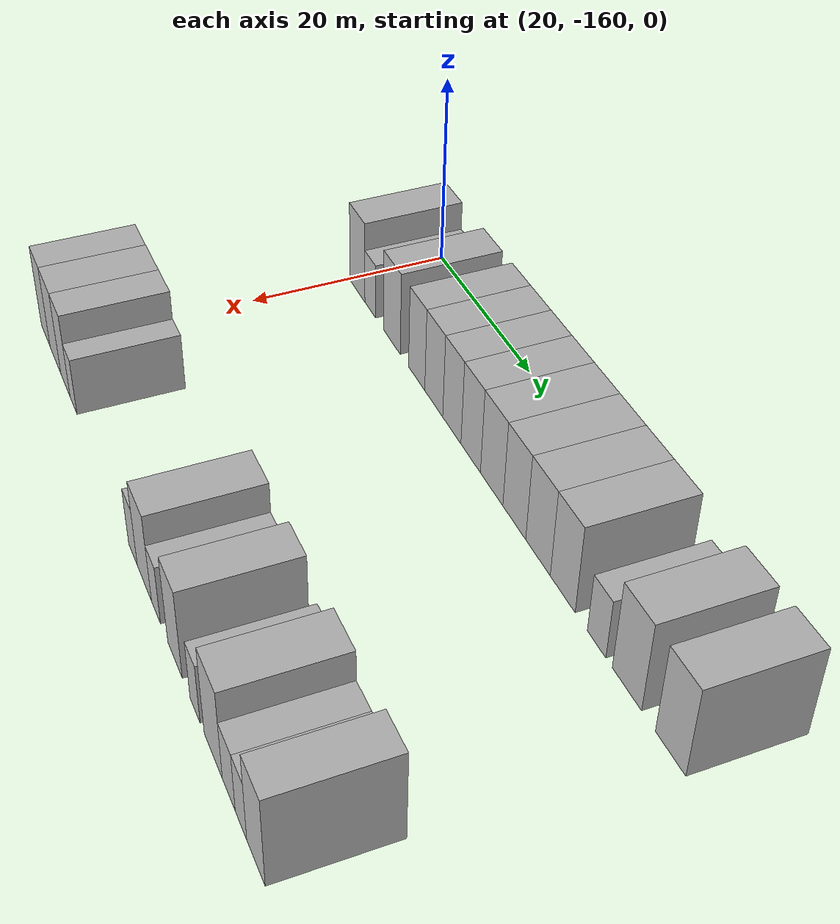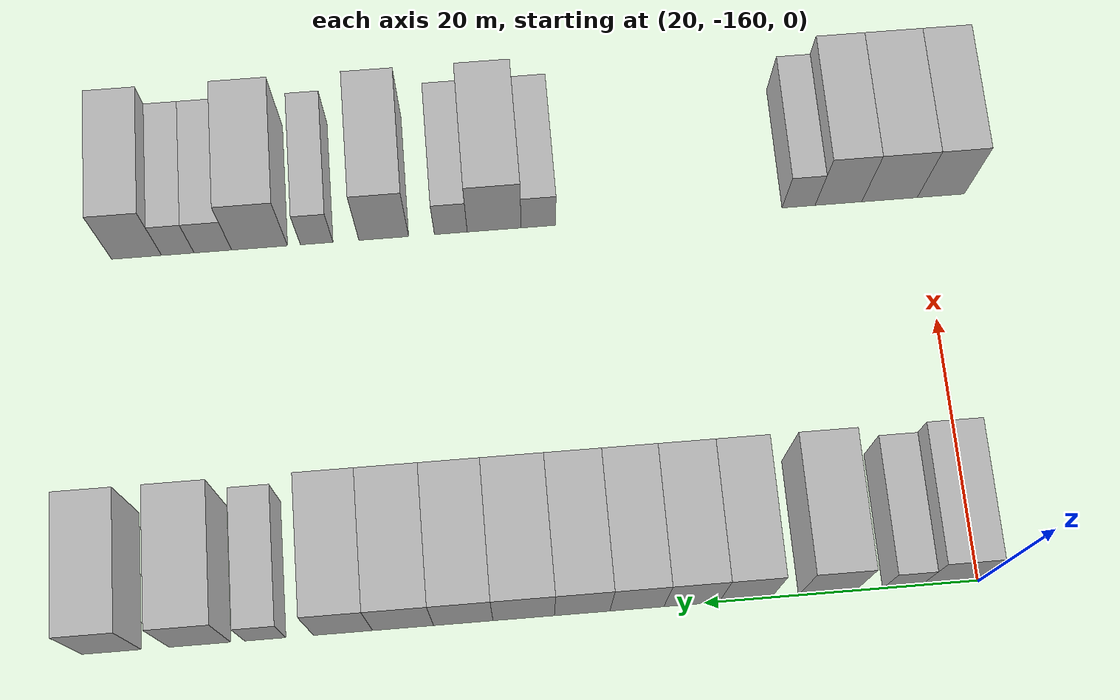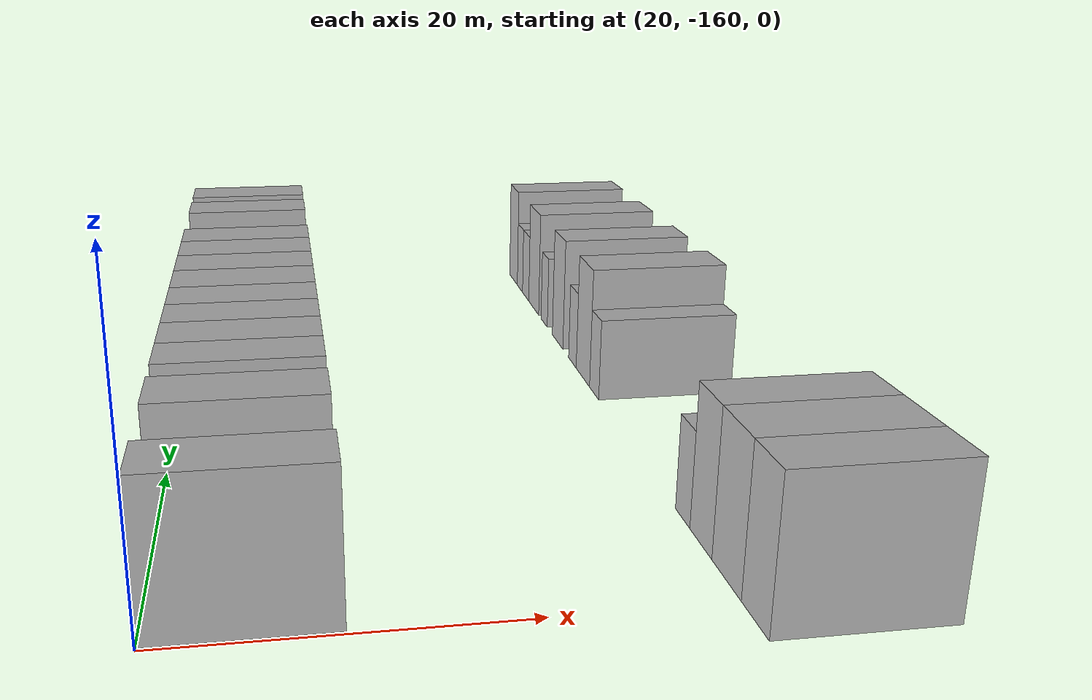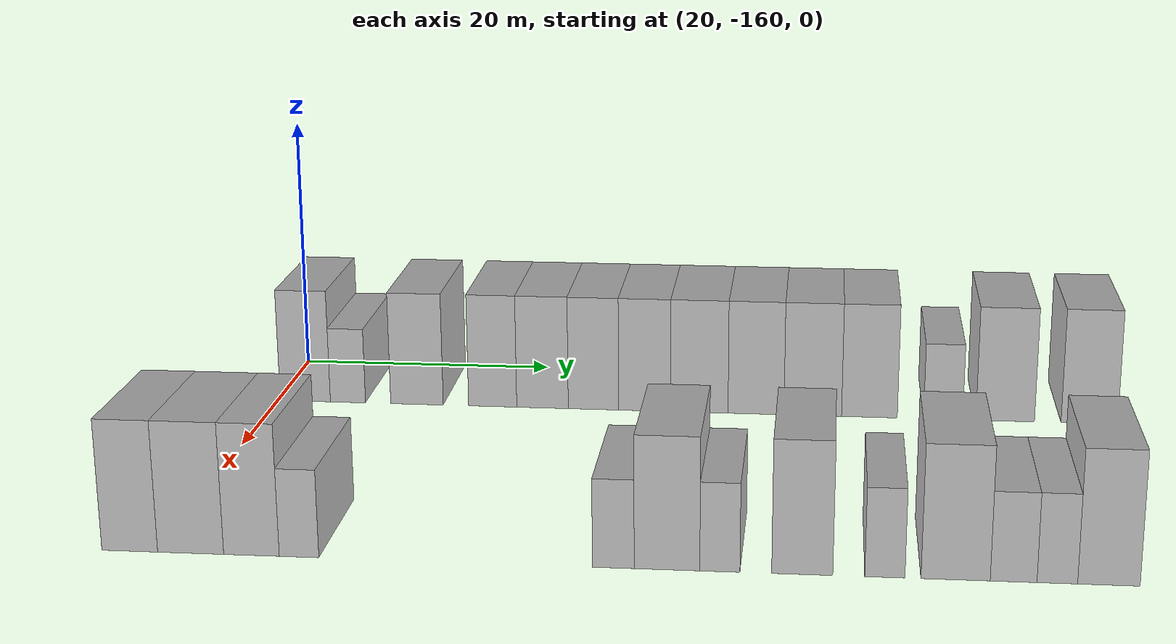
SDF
<sdf version="1.6">
 <world name="default">
  <model name="building_12">
   <static>1</static>
   <pose>25.0000 -157.7931 0 0.000000 0.000000 0.000000</pose>
   <link name="link">
    <pose>0 0 4.50 0 0 0</pose>
    <collision name="collision"><geometry><box><size>10.0000 3.9883 9.0000</size></box></geometry></collision>
    <visual name="visual">
     <cast_shadows>0</cast_shadows>
     <geometry><box><size>10.0000 3.9883 9.0000</size></box></geometry>
     <material>
      <script>
       <uri>model://HANNAS_wall/materials/scripts</uri>
       <uri>model://HANNAS_wall/materials/textures</uri>
       <name>vrc/HANNAS_wall</name>
      </script>
     </material>
    </visual>
   </link>
  </model>
  <model name="building_13">
   <static>1</static>
   <pose>25.0000 -154.4034 0 0.000000 0.000000 0.000000</pose>
   <link name="link">
    <pose>0 0 3.00 0 0 0</pose>
    <collision name="collision"><geometry><box><size>10.0000 2.7912 6.0000</size></box></geometry></collision>
    <visual name="visual">
     <cast_shadows>0</cast_shadows>
     <geometry><box><size>10.0000 2.7912 6.0000</size></box></geometry>
     <material>
      <script>
       <uri>model://HANNAS_wall/materials/scripts</uri>
       <uri>model://HANNAS_wall/materials/textures</uri>
       <name>vrc/HANNAS_wall</name>
      </script>
     </material>
    </visual>
   </link>
  </model>
  <model name="building_14">
   <static>1</static>
   <pose>25.0000 -148.9291 0 0.000000 0.000000 0.000000</pose>
   <link name="link">
    <pose>0 0 4.50 0 0 0</pose>
    <collision name="collision"><geometry><box><size>10.0000 4.1573 9.0000</size></box></geometry></collision>
    <visual name="visual">
     <cast_shadows>0</cast_shadows>
     <geometry><box><size>10.0000 4.1573 9.0000</size></box></geometry>
     <material>
      <script>
       <uri>model://HANNAS_wall/materials/scripts</uri>
       <uri>model://HANNAS_wall/materials/textures</uri>
       <name>vrc/HANNAS_wall</name>
      </script>
     </material>
    </visual>
   </link>
  </model>
  <model name="building_15">
   <static>1</static>
   <pose>25.0000 -142.9591 0 0.000000 0.000000 0.000000</pose>
   <link name="link">
    <pose>0 0 4.50 0 0 0</pose>
    <collision name="collision"><geometry><box><size>10.0000 3.7828 9.0000</size></box></geometry></collision>
    <visual name="visual">
     <cast_shadows>0</cast_shadows>
     <geometry><box><size>10.0000 3.7828 9.0000</size></box></geometry>
     <material>
      <script>
       <uri>model://HANNAS_wall/materials/scripts</uri>
       <uri>model://HANNAS_wall/materials/textures</uri>
       <name>vrc/HANNAS_wall</name>
      </script>
     </material>
    </visual>
   </link>
  </model>
  <model name="building_16">
   <static>1</static>
   <pose>25.0000 -139.0517 0 0.000000 0.000000 0.000000</pose>
   <link name="link">
    <pose>0 0 4.50 0 0 0</pose>
    <collision name="collision"><geometry><box><size>10.0000 4.0319 9.0000</size></box></geometry></collision>
    <visual name="visual">
     <cast_shadows>0</cast_shadows>
     <geometry><box><size>10.0000 4.0319 9.0000</size></box></geometry>
     <material>
      <script>
       <uri>model://HANNAS_wall/materials/scripts</uri>
       <uri>model://HANNAS_wall/materials/textures</uri>
       <name>vrc/HANNAS_wall</name>
      </script>
     </material>
    </visual>
   </link>
  </model>
  <model name="building_17">
   <static>1</static>
   <pose>25.0000 -135.0709 0 0.000000 0.000000 0.000000</pose>
   <link name="link">
    <pose>0 0 4.50 0 0 0</pose>
    <collision name="collision"><geometry><box><size>10.0000 3.9298 9.0000</size></box></geometry></collision>
    <visual name="visual">
     <cast_shadows>0</cast_shadows>
     <geometry><box><size>10.0000 3.9298 9.0000</size></box></geometry>
     <material>
      <script>
       <uri>model://HANNAS_wall/materials/scripts</uri>
       <uri>model://HANNAS_wall/materials/textures</uri>
       <name>vrc/HANNAS_wall</name>
      </script>
     </material>
    </visual>
   </link>
  </model>
  <model name="building_18">
   <static>1</static>
   <pose>25.0000 -131.0898 0 0.000000 0.000000 0.000000</pose>
   <link name="link">
    <pose>0 0 4.50 0 0 0</pose>
    <collision name="collision"><geometry><box><size>10.0000 4.0324 9.0000</size></box></geometry></collision>
    <visual name="visual">
     <cast_shadows>0</cast_shadows>
     <geometry><box><size>10.0000 4.0324 9.0000</size></box></geometry>
     <material>
      <script>
       <uri>model://HANNAS_wall/materials/scripts</uri>
       <uri>model://HANNAS_wall/materials/textures</uri>
       <name>vrc/HANNAS_wall</name>
      </script>
     </material>
    </visual>
   </link>
  </model>
  <model name="building_19">
   <static>1</static>
   <pose>25.0000 -126.8528 0 0.000000 0.000000 0.000000</pose>
   <link name="link">
    <pose>0 0 4.50 0 0 0</pose>
    <collision name="collision"><geometry><box><size>10.0000 4.4417 9.0000</size></box></geometry></collision>
    <visual name="visual">
     <cast_shadows>0</cast_shadows>
     <geometry><box><size>10.0000 4.4417 9.0000</size></box></geometry>
     <material>
      <script>
       <uri>model://HANNAS_wall/materials/scripts</uri>
       <uri>model://HANNAS_wall/materials/textures</uri>
       <name>vrc/HANNAS_wall</name>
      </script>
     </material>
    </visual>
   </link>
  </model>
  <model name="building_20">
   <static>1</static>
   <pose>25.0000 -122.4812 0 0.000000 0.000000 0.000000</pose>
   <link name="link">
    <pose>0 0 4.50 0 0 0</pose>
    <collision name="collision"><geometry><box><size>10.0000 4.3014 9.0000</size></box></geometry></collision>
    <visual name="visual">
     <cast_shadows>0</cast_shadows>
     <geometry><box><size>10.0000 4.3014 9.0000</size></box></geometry>
     <material>
      <script>
       <uri>model://HANNAS_wall/materials/scripts</uri>
       <uri>model://HANNAS_wall/materials/textures</uri>
       <name>vrc/HANNAS_wall</name>
      </script>
     </material>
    </visual>
   </link>
  </model>
  <model name="building_21">
   <static>1</static>
   <pose>25.0000 -118.1228 0 0.000000 0.000000 0.000000</pose>
   <link name="link">
    <pose>0 0 4.50 0 0 0</pose>
    <collision name="collision"><geometry><box><size>10.0000 4.4153 9.0000</size></box></geometry></collision>
    <visual name="visual">
     <cast_shadows>0</cast_shadows>
     <geometry><box><size>10.0000 4.4153 9.0000</size></box></geometry>
     <material>
      <script>
       <uri>model://HANNAS_wall/materials/scripts</uri>
       <uri>model://HANNAS_wall/materials/textures</uri>
       <name>vrc/HANNAS_wall</name>
      </script>
     </material>
    </visual>
   </link>
  </model>
  <model name="building_22">
   <static>1</static>
   <pose>25.0000 -113.7899 0 0.000000 0.000000 0.000000</pose>
   <link name="link">
    <pose>0 0 4.50 0 0 0</pose>
    <collision name="collision"><geometry><box><size>10.0000 4.2507 9.0000</size></box></geometry></collision>
    <visual name="visual">
     <cast_shadows>0</cast_shadows>
     <geometry><box><size>10.0000 4.2507 9.0000</size></box></geometry>
     <material>
      <script>
       <uri>model://HANNAS_wall/materials/scripts</uri>
       <uri>model://HANNAS_wall/materials/textures</uri>
       <name>vrc/HANNAS_wall</name>
      </script>
     </material>
    </visual>
   </link>
  </model>
  <model name="building_23">
   <static>1</static>
   <pose>25.0000 -108.1817 0 0.000000 0.000000 0.000000</pose>
   <link name="link">
    <pose>0 0 3.00 0 0 0</pose>
    <collision name="collision"><geometry><box><size>10.0000 2.9656 6.0000</size></box></geometry></collision>
    <visual name="visual">
     <cast_shadows>0</cast_shadows>
     <geometry><box><size>10.0000 2.9656 6.0000</size></box></geometry>
     <material>
      <script>
       <uri>model://HANNAS_wall/materials/scripts</uri>
       <uri>model://HANNAS_wall/materials/textures</uri>
       <name>vrc/HANNAS_wall</name>
      </script>
     </material>
    </visual>
   </link>
  </model>
  <model name="building_24">
   <static>1</static>
   <pose>25.0000 -103.4862 0 0.000000 0.000000 0.000000</pose>
   <link name="link">
    <pose>0 0 4.50 0 0 0</pose>
    <collision name="collision"><geometry><box><size>10.0000 4.4254 9.0000</size></box></geometry></collision>
    <visual name="visual">
     <cast_shadows>0</cast_shadows>
     <geometry><box><size>10.0000 4.4254 9.0000</size></box></geometry>
     <material>
      <script>
       <uri>model://HANNAS_wall/materials/scripts</uri>
       <uri>model://HANNAS_wall/materials/textures</uri>
       <name>vrc/HANNAS_wall</name>
      </script>
     </material>
    </visual>
   </link>
  </model>
  <model name="building_25">
   <static>1</static>
   <pose>25.0000 -97.1496 0 0.000000 0.000000 0.000000</pose>
   <link name="link">
    <pose>0 0 4.50 0 0 0</pose>
    <collision name="collision"><geometry><box><size>10.0000 4.2478 9.0000</size></box></geometry></collision>
    <visual name="visual">
     <cast_shadows>0</cast_shadows>
     <geometry><box><size>10.0000 4.2478 9.0000</size></box></geometry>
     <material>
      <script>
       <uri>model://HANNAS_wall/materials/scripts</uri>
       <uri>model://HANNAS_wall/materials/textures</uri>
       <name>vrc/HANNAS_wall</name>
      </script>
     </material>
    </visual>
   </link>
  </model>
  <model name="building_118">
   <static>1</static>
   <pose>55.0000 -161.7903 0 0.000000 0.000000 0.000000</pose>
   <link name="link">
    <pose>0 0 4.50 0 0 0</pose>
    <collision name="collision"><geometry><box><size>10.0000 3.6943 9.0000</size></box></geometry></collision>
    <visual name="visual">
     <cast_shadows>0</cast_shadows>
     <geometry><box><size>10.0000 3.6943 9.0000</size></box></geometry>
     <material>
      <script>
       <uri>model://HANNAS_wall/materials/scripts</uri>
       <uri>model://HANNAS_wall/materials/textures</uri>
       <name>vrc/HANNAS_wall</name>
      </script>
     </material>
    </visual>
   </link>
  </model>
  <model name="building_119">
   <static>1</static>
   <pose>55.0000 -157.7652 0 0.000000 0.000000 0.000000</pose>
   <link name="link">
    <pose>0 0 4.50 0 0 0</pose>
    <collision name="collision"><geometry><box><size>10.0000 4.3559 9.0000</size></box></geometry></collision>
    <visual name="visual">
     <cast_shadows>0</cast_shadows>
     <geometry><box><size>10.0000 4.3559 9.0000</size></box></geometry>
     <material>
      <script>
       <uri>model://HANNAS_wall/materials/scripts</uri>
       <uri>model://HANNAS_wall/materials/textures</uri>
       <name>vrc/HANNAS_wall</name>
      </script>
     </material>
    </visual>
   </link>
  </model>
  <model name="building_120">
   <static>1</static>
   <pose>55.0000 -153.7625 0 0.000000 0.000000 0.000000</pose>
   <link name="link">
    <pose>0 0 4.50 0 0 0</pose>
    <collision name="collision"><geometry><box><size>10.0000 3.6496 9.0000</size></box></geometry></collision>
    <visual name="visual">
     <cast_shadows>0</cast_shadows>
     <geometry><box><size>10.0000 3.6496 9.0000</size></box></geometry>
     <material>
      <script>
       <uri>model://HANNAS_wall/materials/scripts</uri>
       <uri>model://HANNAS_wall/materials/textures</uri>
       <name>vrc/HANNAS_wall</name>
      </script>
     </material>
    </visual>
   </link>
  </model>
  <model name="building_121">
   <static>1</static>
   <pose>55.0000 -150.6446 0 0.000000 0.000000 0.000000</pose>
   <link name="link">
    <pose>0 0 3.00 0 0 0</pose>
    <collision name="collision"><geometry><box><size>10.0000 2.5862 6.0000</size></box></geometry></collision>
    <visual name="visual">
     <cast_shadows>0</cast_shadows>
     <geometry><box><size>10.0000 2.5862 6.0000</size></box></geometry>
     <material>
      <script>
       <uri>model://HANNAS_wall/materials/scripts</uri>
       <uri>model://HANNAS_wall/materials/textures</uri>
       <name>vrc/HANNAS_wall</name>
      </script>
     </material>
    </visual>
   </link>
  </model>
  <model name="building_122">
   <static>1</static>
   <pose>55.0000 -130.3611 0 0.000000 0.000000 0.000000</pose>
   <link name="link">
    <pose>0 0 3.00 0 0 0</pose>
    <collision name="collision"><geometry><box><size>10.0000 2.6603 6.0000</size></box></geometry></collision>
    <visual name="visual">
     <cast_shadows>0</cast_shadows>
     <geometry><box><size>10.0000 2.6603 6.0000</size></box></geometry>
     <material>
      <script>
       <uri>model://HANNAS_wall/materials/scripts</uri>
       <uri>model://HANNAS_wall/materials/textures</uri>
       <name>vrc/HANNAS_wall</name>
      </script>
     </material>
    </visual>
   </link>
  </model>
  <model name="building_123">
   <static>1</static>
   <pose>55.0000 -126.9482 0 0.000000 0.000000 0.000000</pose>
   <link name="link">
    <pose>0 0 4.50 0 0 0</pose>
    <collision name="collision"><geometry><box><size>10.0000 4.1655 9.0000</size></box></geometry></collision>
    <visual name="visual">
     <cast_shadows>0</cast_shadows>
     <geometry><box><size>10.0000 4.1655 9.0000</size></box></geometry>
     <material>
      <script>
       <uri>model://HANNAS_wall/materials/scripts</uri>
       <uri>model://HANNAS_wall/materials/textures</uri>
       <name>vrc/HANNAS_wall</name>
      </script>
     </material>
    </visual>
   </link>
  </model>
  <model name="building_124">
   <static>1</static>
   <pose>55.0000 -123.5980 0 0.000000 0.000000 0.000000</pose>
   <link name="link">
    <pose>0 0 3.00 0 0 0</pose>
    <collision name="collision"><geometry><box><size>10.0000 2.5348 6.0000</size></box></geometry></collision>
    <visual name="visual">
     <cast_shadows>0</cast_shadows>
     <geometry><box><size>10.0000 2.5348 6.0000</size></box></geometry>
     <material>
      <script>
       <uri>model://HANNAS_wall/materials/scripts</uri>
       <uri>model://HANNAS_wall/materials/textures</uri>
       <name>vrc/HANNAS_wall</name>
      </script>
     </material>
    </visual>
   </link>
  </model>
  <model name="building_125">
   <static>1</static>
   <pose>55.0000 -118.4107 0 0.000000 0.000000 0.000000</pose>
   <link name="link">
    <pose>0 0 4.50 0 0 0</pose>
    <collision name="collision"><geometry><box><size>10.0000 3.8397 9.0000</size></box></geometry></collision>
    <visual name="visual">
     <cast_shadows>0</cast_shadows>
     <geometry><box><size>10.0000 3.8397 9.0000</size></box></geometry>
     <material>
      <script>
       <uri>model://HANNAS_wall/materials/scripts</uri>
       <uri>model://HANNAS_wall/materials/textures</uri>
       <name>vrc/HANNAS_wall</name>
      </script>
     </material>
    </visual>
   </link>
  </model>
  <model name="building_126">
   <static>1</static>
   <pose>55.0000 -113.2372 0 0.000000 0.000000 0.000000</pose>
   <link name="link">
    <pose>0 0 3.00 0 0 0</pose>
    <collision name="collision"><geometry><box><size>10.0000 2.5073 6.0000</size></box></geometry></collision>
    <visual name="visual">
     <cast_shadows>0</cast_shadows>
     <geometry><box><size>10.0000 2.5073 6.0000</size></box></geometry>
     <material>
      <script>
       <uri>model://HANNAS_wall/materials/scripts</uri>
       <uri>model://HANNAS_wall/materials/textures</uri>
       <name>vrc/HANNAS_wall</name>
      </script>
     </material>
    </visual>
   </link>
  </model>
  <model name="building_127">
   <static>1</static>
   <pose>55.0000 -108.8363 0 0.000000 0.000000 0.000000</pose>
   <link name="link">
    <pose>0 0 4.50 0 0 0</pose>
    <collision name="collision"><geometry><box><size>10.0000 4.2945 9.0000</size></box></geometry></collision>
    <visual name="visual">
     <cast_shadows>0</cast_shadows>
     <geometry><box><size>10.0000 4.2945 9.0000</size></box></geometry>
     <material>
      <script>
       <uri>model://HANNAS_wall/materials/scripts</uri>
       <uri>model://HANNAS_wall/materials/textures</uri>
       <name>vrc/HANNAS_wall</name>
      </script>
     </material>
    </visual>
   </link>
  </model>
  <model name="building_128">
   <static>1</static>
   <pose>55.0000 -105.2444 0 0.000000 0.000000 0.000000</pose>
   <link name="link">
    <pose>0 0 3.00 0 0 0</pose>
    <collision name="collision"><geometry><box><size>10.0000 2.8894 6.0000</size></box></geometry></collision>
    <visual name="visual">
     <cast_shadows>0</cast_shadows>
     <geometry><box><size>10.0000 2.8894 6.0000</size></box></geometry>
     <material>
      <script>
       <uri>model://HANNAS_wall/materials/scripts</uri>
       <uri>model://HANNAS_wall/materials/textures</uri>
       <name>vrc/HANNAS_wall</name>
      </script>
     </material>
    </visual>
   </link>
  </model>
  <model name="building_129">
   <static>1</static>
   <pose>55.0000 -102.5487 0 0.000000 0.000000 0.000000</pose>
   <link name="link">
    <pose>0 0 3.00 0 0 0</pose>
    <collision name="collision"><geometry><box><size>10.0000 2.5020 6.0000</size></box></geometry></collision>
    <visual name="visual">
     <cast_shadows>0</cast_shadows>
     <geometry><box><size>10.0000 2.5020 6.0000</size></box></geometry>
     <material>
      <script>
       <uri>model://HANNAS_wall/materials/scripts</uri>
       <uri>model://HANNAS_wall/materials/textures</uri>
       <name>vrc/HANNAS_wall</name>
      </script>
     </material>
    </visual>
   </link>
  </model>
  <model name="building_130">
   <static>1</static>
   <pose>55.0000 -99.3823 0 0.000000 0.000000 0.000000</pose>
   <link name="link">
    <pose>0 0 4.50 0 0 0</pose>
    <collision name="collision"><geometry><box><size>10.0000 3.8308 9.0000</size></box></geometry></collision>
    <visual name="visual">
     <cast_shadows>0</cast_shadows>
     <geometry><box><size>10.0000 3.8308 9.0000</size></box></geometry>
     <material>
      <script>
       <uri>model://HANNAS_wall/materials/scripts</uri>
       <uri>model://HANNAS_wall/materials/textures</uri>
       <name>vrc/HANNAS_wall</name>
      </script>
     </material>
    </visual>
   </link>
  </model>
 </world>
</sdf>
